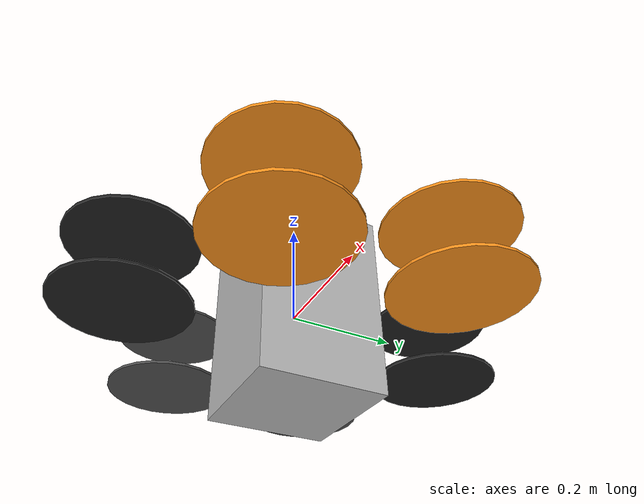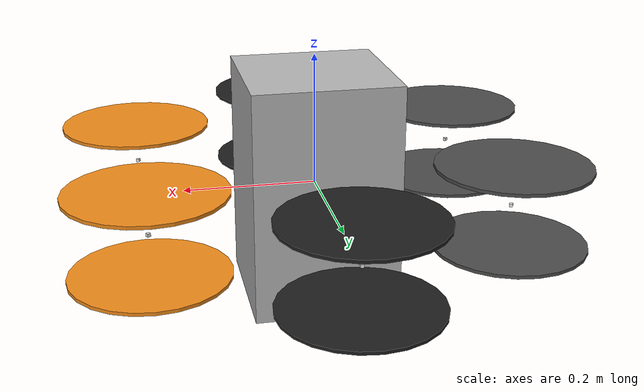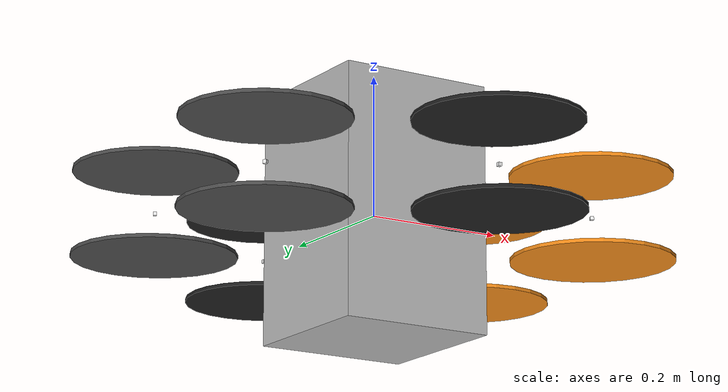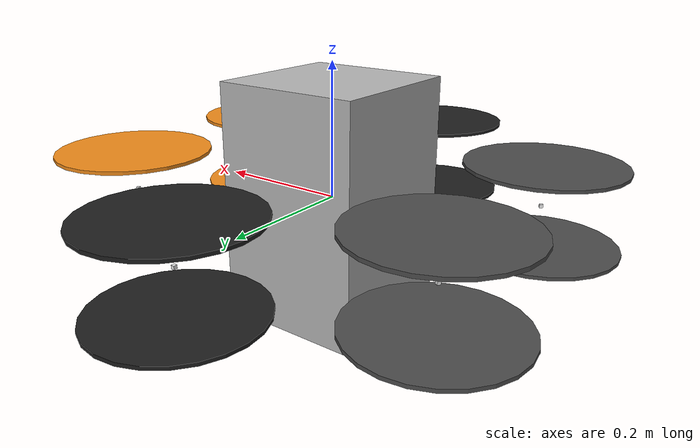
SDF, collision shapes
<sdf version='1.12'>
  <model name='omav'>
    <link name='omav/base_link'>
      <inertial>
        <pose>0 0 0 0 0 0</pose>
        <mass>2.2999999999999998</mass>
        <inertia>
          <ixx>0.0074999999999999997</ixx>
          <ixy>-3.4208000000000002e-05</ixy>
          <ixz>2.4695e-05</ixz>
          <iyy>0.010939000000000001</iyy>
          <iyz>-3.8825999999999999e-06</iyz>
          <izz>0.013690000000000001</izz>
        </inertia>
      </inertial>
      <collision name='omav/base_link_inertia_collision'>
        <pose>0 0 0 0 0 0</pose>
        <geometry>
          <box>
            <size>0.22 0.22 0.34999999999999998</size>
          </box>
        </geometry>
      </collision>
      <visual name='omav/base_link_inertia_visual'>
        <pose>0 0 0 0 0 0</pose>
        <geometry>
          <mesh>
            <scale>1 1 1</scale>
            <uri>model://meshes/omav_core.dae</uri>
          </mesh>
        </geometry>
      </visual>
    </link>
    <joint name='omav/tilt_unit_0_revolutejoint' type='revolute'>
      <pose relative_to='omav/base_link'>0 -0.29999999999999999 0 0 0 -1.5707963267995859</pose>
      <parent>omav/base_link</parent>
      <child>omav/tilt_unit_0</child>
      <axis>
        <xyz>1 0 0</xyz>
        <limit>
          <lower>-inf</lower>
          <upper>inf</upper>
        </limit>
        <dynamics>
          <spring_reference>0</spring_reference>
          <spring_stiffness>0</spring_stiffness>
        </dynamics>
      </axis>
    </joint>
    <link name='omav/tilt_unit_0'>
      <pose relative_to='omav/tilt_unit_0_revolutejoint'>0 0 0 0 0 0</pose>
      <inertial>
        <pose>0 0 0 0 0 0</pose>
        <mass>0.27700000000000002</mass>
        <inertia>
          <ixx>0.00034256999999999999</ixx>
          <ixy>0</ixy>
          <ixz>0</ixz>
          <iyy>0.0013205000000000001</iyy>
          <iyz>0</iyz>
          <izz>0.0010036999999999999</izz>
        </inertia>
      </inertial>
      <collision name='omav/tilt_unit_0_collision'>
        <pose>0 0 0 0 0 0</pose>
        <geometry>
          <box>
            <size>0.0050000000000000001 0.0050000000000000001 0.0050000000000000001</size>
          </box>
        </geometry>
        <surface>
          <contact>
            <ode/>
          </contact>
          <friction>
            <ode/>
          </friction>
        </surface>
      </collision>
      <visual name='omav/tilt_unit_0_visual'>
        <pose>0 0 0 0 0 0</pose>
        <geometry>
          <mesh>
            <scale>1 1 1</scale>
            <uri>model://meshes/omav_tiltarm.dae</uri>
          </mesh>
        </geometry>
        <material>
          <script>
            <name>Gazebo/White</name>
            <uri>file://media/materials/scripts/gazebo.material</uri>
          </script>
        </material>
      </visual>
    </link>
    <joint name='rotor_0_joint' type='revolute'>
      <pose relative_to='omav/tilt_unit_0'>0 0 0.059999999999999998 0 0 0</pose>
      <parent>omav/tilt_unit_0</parent>
      <child>rotor_0</child>
      <axis>
        <xyz>0 0 1</xyz>
        <limit>
          <lower>-inf</lower>
          <upper>inf</upper>
        </limit>
        <dynamics>
          <spring_reference>0</spring_reference>
          <spring_stiffness>0</spring_stiffness>
        </dynamics>
      </axis>
    </joint>
    <link name='rotor_0'>
      <pose relative_to='rotor_0_joint'>0 0 0 0 0 0</pose>
      <inertial>
        <pose>0 0 0 0 0 0</pose>
        <mass>0.0064999999999999997</mass>
        <inertia>
          <ixx>2.2154157804999998e-06</ixx>
          <ixy>0</ixy>
          <ixz>0</ixz>
          <iyy>7.0814709174105009e-05</iyy>
          <iyz>0</iyz>
          <izz>7.2932624993605005e-05</izz>
        </inertia>
      </inertial>
      <collision name='rotor_0_collision'>
        <pose>0 0 0 0 0 0</pose>
        <geometry>
          <cylinder>
            <length>0.0050000000000000001</length>
            <radius>0.1143</radius>
          </cylinder>
        </geometry>
        <surface>
          <contact>
            <ode/>
          </contact>
          <friction>
            <ode/>
          </friction>
        </surface>
      </collision>
      <visual name='rotor_0_visual'>
        <pose>0 0 0 0 0 0</pose>
        <geometry>
          <mesh>
            <scale>0.1143 0.1143 0.1143</scale>
            <uri>model://meshes/motor_prop_assembly.dae</uri>
          </mesh>
        </geometry>
        <material>
          <script>
            <name>Gazebo/Black</name>
            <uri>file://media/materials/scripts/gazebo.material</uri>
          </script>
        </material>
      </visual>
    </link>
    <joint name='rotor_6_joint' type='revolute'>
      <pose relative_to='omav/tilt_unit_0'>0 0 -0.059999999999999998 0 0 0</pose>
      <parent>omav/tilt_unit_0</parent>
      <child>rotor_6</child>
      <axis>
        <xyz>0 0 1</xyz>
        <limit>
          <lower>-inf</lower>
          <upper>inf</upper>
        </limit>
        <dynamics>
          <spring_reference>0</spring_reference>
          <spring_stiffness>0</spring_stiffness>
        </dynamics>
      </axis>
    </joint>
    <link name='rotor_6'>
      <pose relative_to='rotor_6_joint'>0 0 0 0 0 0</pose>
      <inertial>
        <pose>0 0 0 0 0 0</pose>
        <mass>0.0064999999999999997</mass>
        <inertia>
          <ixx>2.2154157804999998e-06</ixx>
          <ixy>0</ixy>
          <ixz>0</ixz>
          <iyy>7.0814709174105009e-05</iyy>
          <iyz>0</iyz>
          <izz>7.2932624993605005e-05</izz>
        </inertia>
      </inertial>
      <collision name='rotor_6_collision'>
        <pose>0 0 0 0 0 0</pose>
        <geometry>
          <cylinder>
            <length>0.0050000000000000001</length>
            <radius>0.1143</radius>
          </cylinder>
        </geometry>
        <surface>
          <contact>
            <ode/>
          </contact>
          <friction>
            <ode/>
          </friction>
        </surface>
      </collision>
      <visual name='rotor_6_visual'>
        <pose>0 0 0 0 0 0</pose>
        <geometry>
          <mesh>
            <scale>0.1143 0.1143 0.1143</scale>
            <uri>model://meshes/motor_prop_assembly.dae</uri>
          </mesh>
        </geometry>
        <material>
          <script>
            <name>Gazebo/Black</name>
            <uri>file://media/materials/scripts/gazebo.material</uri>
          </script>
        </material>
      </visual>
    </link>
    <joint name='omav/tilt_unit_1_revolutejoint' type='revolute'>
      <pose relative_to='omav/base_link'>0 0.29999999999999999 0 0 0 1.57079632679</pose>
      <parent>omav/base_link</parent>
      <child>omav/tilt_unit_1</child>
      <axis>
        <xyz>1 0 0</xyz>
        <limit>
          <lower>-inf</lower>
          <upper>inf</upper>
        </limit>
        <dynamics>
          <spring_reference>0</spring_reference>
          <spring_stiffness>0</spring_stiffness>
        </dynamics>
      </axis>
    </joint>
    <link name='omav/tilt_unit_1'>
      <pose relative_to='omav/tilt_unit_1_revolutejoint'>0 0 0 0 0 0</pose>
      <inertial>
        <pose>0 0 0 0 0 0</pose>
        <mass>0.27700000000000002</mass>
        <inertia>
          <ixx>0.00034256999999999999</ixx>
          <ixy>0</ixy>
          <ixz>0</ixz>
          <iyy>0.0013205000000000001</iyy>
          <iyz>0</iyz>
          <izz>0.0010036999999999999</izz>
        </inertia>
      </inertial>
      <collision name='omav/tilt_unit_1_collision'>
        <pose>0 0 0 0 0 0</pose>
        <geometry>
          <box>
            <size>0.0050000000000000001 0.0050000000000000001 0.0050000000000000001</size>
          </box>
        </geometry>
        <surface>
          <contact>
            <ode/>
          </contact>
          <friction>
            <ode/>
          </friction>
        </surface>
      </collision>
      <visual name='omav/tilt_unit_1_visual'>
        <pose>0 0 0 0 0 0</pose>
        <geometry>
          <mesh>
            <scale>1 1 1</scale>
            <uri>model://meshes/omav_tiltarm.dae</uri>
          </mesh>
        </geometry>
        <material>
          <script>
            <name>Gazebo/White</name>
            <uri>file://media/materials/scripts/gazebo.material</uri>
          </script>
        </material>
      </visual>
    </link>
    <joint name='rotor_1_joint' type='revolute'>
      <pose relative_to='omav/tilt_unit_1'>0 0 0.059999999999999998 0 0 0</pose>
      <parent>omav/tilt_unit_1</parent>
      <child>rotor_1</child>
      <axis>
        <xyz>0 0 1</xyz>
        <limit>
          <lower>-inf</lower>
          <upper>inf</upper>
        </limit>
        <dynamics>
          <spring_reference>0</spring_reference>
          <spring_stiffness>0</spring_stiffness>
        </dynamics>
      </axis>
    </joint>
    <link name='rotor_1'>
      <pose relative_to='rotor_1_joint'>0 0 0 0 0 0</pose>
      <inertial>
        <pose>0 0 0 0 0 0</pose>
        <mass>0.0064999999999999997</mass>
        <inertia>
          <ixx>2.2154157804999998e-06</ixx>
          <ixy>0</ixy>
          <ixz>0</ixz>
          <iyy>7.0814709174105009e-05</iyy>
          <iyz>0</iyz>
          <izz>7.2932624993605005e-05</izz>
        </inertia>
      </inertial>
      <collision name='rotor_1_collision'>
        <pose>0 0 0 0 0 0</pose>
        <geometry>
          <cylinder>
            <length>0.0050000000000000001</length>
            <radius>0.1143</radius>
          </cylinder>
        </geometry>
        <surface>
          <contact>
            <ode/>
          </contact>
          <friction>
            <ode/>
          </friction>
        </surface>
      </collision>
      <visual name='rotor_1_visual'>
        <pose>0 0 0 0 0 0</pose>
        <geometry>
          <mesh>
            <scale>0.1143 0.1143 0.1143</scale>
            <uri>model://meshes/motor_prop_assembly.dae</uri>
          </mesh>
        </geometry>
        <material>
          <script>
            <name>Gazebo/Black</name>
            <uri>file://media/materials/scripts/gazebo.material</uri>
          </script>
        </material>
      </visual>
    </link>
    <joint name='rotor_7_joint' type='revolute'>
      <pose relative_to='omav/tilt_unit_1'>0 0 -0.059999999999999998 0 0 0</pose>
      <parent>omav/tilt_unit_1</parent>
      <child>rotor_7</child>
      <axis>
        <xyz>0 0 1</xyz>
        <limit>
          <lower>-inf</lower>
          <upper>inf</upper>
        </limit>
        <dynamics>
          <spring_reference>0</spring_reference>
          <spring_stiffness>0</spring_stiffness>
        </dynamics>
      </axis>
    </joint>
    <link name='rotor_7'>
      <pose relative_to='rotor_7_joint'>0 0 0 0 0 0</pose>
      <inertial>
        <pose>0 0 0 0 0 0</pose>
        <mass>0.0064999999999999997</mass>
        <inertia>
          <ixx>2.2154157804999998e-06</ixx>
          <ixy>0</ixy>
          <ixz>0</ixz>
          <iyy>7.0814709174105009e-05</iyy>
          <iyz>0</iyz>
          <izz>7.2932624993605005e-05</izz>
        </inertia>
      </inertial>
      <collision name='rotor_7_collision'>
        <pose>0 0 0 0 0 0</pose>
        <geometry>
          <cylinder>
            <length>0.0050000000000000001</length>
            <radius>0.1143</radius>
          </cylinder>
        </geometry>
        <surface>
          <contact>
            <ode/>
          </contact>
          <friction>
            <ode/>
          </friction>
        </surface>
      </collision>
      <visual name='rotor_7_visual'>
        <pose>0 0 0 0 0 0</pose>
        <geometry>
          <mesh>
            <scale>0.1143 0.1143 0.1143</scale>
            <uri>model://meshes/motor_prop_assembly.dae</uri>
          </mesh>
        </geometry>
        <material>
          <script>
            <name>Gazebo/Black</name>
            <uri>file://media/materials/scripts/gazebo.material</uri>
          </script>
        </material>
      </visual>
    </link>
    <joint name='omav/tilt_unit_2_revolutejoint' type='revolute'>
      <pose relative_to='omav/base_link'>0.25980762113520001 0.14999999999999999 0 0 0 0.52359877559000012</pose>
      <parent>omav/base_link</parent>
      <child>omav/tilt_unit_2</child>
      <axis>
        <xyz>1 0 0</xyz>
        <limit>
          <lower>-inf</lower>
          <upper>inf</upper>
        </limit>
        <dynamics>
          <spring_reference>0</spring_reference>
          <spring_stiffness>0</spring_stiffness>
        </dynamics>
      </axis>
    </joint>
    <link name='omav/tilt_unit_2'>
      <pose relative_to='omav/tilt_unit_2_revolutejoint'>0 0 0 0 0 0</pose>
      <inertial>
        <pose>0 0 0 0 0 0</pose>
        <mass>0.27700000000000002</mass>
        <inertia>
          <ixx>0.00034256999999999999</ixx>
          <ixy>0</ixy>
          <ixz>0</ixz>
          <iyy>0.0013205000000000001</iyy>
          <iyz>0</iyz>
          <izz>0.0010036999999999999</izz>
        </inertia>
      </inertial>
      <collision name='omav/tilt_unit_2_collision'>
        <pose>0 0 0 0 0 0</pose>
        <geometry>
          <box>
            <size>0.0050000000000000001 0.0050000000000000001 0.0050000000000000001</size>
          </box>
        </geometry>
        <surface>
          <contact>
            <ode/>
          </contact>
          <friction>
            <ode/>
          </friction>
        </surface>
      </collision>
      <visual name='omav/tilt_unit_2_visual'>
        <pose>0 0 0 0 0 0</pose>
        <geometry>
          <mesh>
            <scale>1 1 1</scale>
            <uri>model://meshes/omav_tiltarm.dae</uri>
          </mesh>
        </geometry>
        <material>
          <script>
            <name>Gazebo/White</name>
            <uri>file://media/materials/scripts/gazebo.material</uri>
          </script>
        </material>
      </visual>
    </link>
    <joint name='rotor_2_joint' type='revolute'>
      <pose relative_to='omav/tilt_unit_2'>0 0 0.059999999999999998 0 0 0</pose>
      <parent>omav/tilt_unit_2</parent>
      <child>rotor_2</child>
      <axis>
        <xyz>0 0 1</xyz>
        <limit>
          <lower>-inf</lower>
          <upper>inf</upper>
        </limit>
        <dynamics>
          <spring_reference>0</spring_reference>
          <spring_stiffness>0</spring_stiffness>
        </dynamics>
      </axis>
    </joint>
    <link name='rotor_2'>
      <pose relative_to='rotor_2_joint'>0 0 0 0 0 0</pose>
      <inertial>
        <pose>0 0 0 0 0 0</pose>
        <mass>0.0064999999999999997</mass>
        <inertia>
          <ixx>2.2154157804999998e-06</ixx>
          <ixy>0</ixy>
          <ixz>0</ixz>
          <iyy>7.0814709174105009e-05</iyy>
          <iyz>0</iyz>
          <izz>7.2932624993605005e-05</izz>
        </inertia>
      </inertial>
      <collision name='rotor_2_collision'>
        <pose>0 0 0 0 0 0</pose>
        <geometry>
          <cylinder>
            <length>0.0050000000000000001</length>
            <radius>0.1143</radius>
          </cylinder>
        </geometry>
        <surface>
          <contact>
            <ode/>
          </contact>
          <friction>
            <ode/>
          </friction>
        </surface>
      </collision>
      <visual name='rotor_2_visual'>
        <pose>0 0 0 0 0 0</pose>
        <geometry>
          <mesh>
            <scale>0.1143 0.1143 0.1143</scale>
            <uri>model://meshes/motor_prop_assembly.dae</uri>
          </mesh>
        </geometry>
        <material>
          <script>
            <name>Gazebo/Orange</name>
            <uri>file://media/materials/scripts/gazebo.material</uri>
          </script>
        </material>
      </visual>
    </link>
    <joint name='rotor_8_joint' type='revolute'>
      <pose relative_to='omav/tilt_unit_2'>0 0 -0.059999999999999998 0 0 0</pose>
      <parent>omav/tilt_unit_2</parent>
      <child>rotor_8</child>
      <axis>
        <xyz>0 0 1</xyz>
        <limit>
          <lower>-inf</lower>
          <upper>inf</upper>
        </limit>
        <dynamics>
          <spring_reference>0</spring_reference>
          <spring_stiffness>0</spring_stiffness>
        </dynamics>
      </axis>
    </joint>
    <link name='rotor_8'>
      <pose relative_to='rotor_8_joint'>0 0 0 0 0 0</pose>
      <inertial>
        <pose>0 0 0 0 0 0</pose>
        <mass>0.0064999999999999997</mass>
        <inertia>
          <ixx>2.2154157804999998e-06</ixx>
          <ixy>0</ixy>
          <ixz>0</ixz>
          <iyy>7.0814709174105009e-05</iyy>
          <iyz>0</iyz>
          <izz>7.2932624993605005e-05</izz>
        </inertia>
      </inertial>
      <collision name='rotor_8_collision'>
        <pose>0 0 0 0 0 0</pose>
        <geometry>
          <cylinder>
            <length>0.0050000000000000001</length>
            <radius>0.1143</radius>
          </cylinder>
        </geometry>
        <surface>
          <contact>
            <ode/>
          </contact>
          <friction>
            <ode/>
          </friction>
        </surface>
      </collision>
      <visual name='rotor_8_visual'>
        <pose>0 0 0 0 0 0</pose>
        <geometry>
          <mesh>
            <scale>0.1143 0.1143 0.1143</scale>
            <uri>model://meshes/motor_prop_assembly.dae</uri>
          </mesh>
        </geometry>
        <material>
          <script>
            <name>Gazebo/Orange</name>
            <uri>file://media/materials/scripts/gazebo.material</uri>
          </script>
        </material>
      </visual>
    </link>
    <joint name='omav/tilt_unit_3_revolutejoint' type='revolute'>
      <pose relative_to='omav/base_link'>-0.25980762113520001 -0.14999999999999999 0 0 0 -2.617993877989587</pose>
      <parent>omav/base_link</parent>
      <child>omav/tilt_unit_3</child>
      <axis>
        <xyz>1 0 0</xyz>
        <limit>
          <lower>-inf</lower>
          <upper>inf</upper>
        </limit>
        <dynamics>
          <spring_reference>0</spring_reference>
          <spring_stiffness>0</spring_stiffness>
        </dynamics>
      </axis>
    </joint>
    <link name='omav/tilt_unit_3'>
      <pose relative_to='omav/tilt_unit_3_revolutejoint'>0 0 0 0 0 0</pose>
      <inertial>
        <pose>0 0 0 0 0 0</pose>
        <mass>0.27700000000000002</mass>
        <inertia>
          <ixx>0.00034256999999999999</ixx>
          <ixy>0</ixy>
          <ixz>0</ixz>
          <iyy>0.0013205000000000001</iyy>
          <iyz>0</iyz>
          <izz>0.0010036999999999999</izz>
        </inertia>
      </inertial>
      <collision name='omav/tilt_unit_3_collision'>
        <pose>0 0 0 0 0 0</pose>
        <geometry>
          <box>
            <size>0.0050000000000000001 0.0050000000000000001 0.0050000000000000001</size>
          </box>
        </geometry>
        <surface>
          <contact>
            <ode/>
          </contact>
          <friction>
            <ode/>
          </friction>
        </surface>
      </collision>
      <visual name='omav/tilt_unit_3_visual'>
        <pose>0 0 0 0 0 0</pose>
        <geometry>
          <mesh>
            <scale>1 1 1</scale>
            <uri>model://meshes/omav_tiltarm.dae</uri>
          </mesh>
        </geometry>
        <material>
          <script>
            <name>Gazebo/White</name>
            <uri>file://media/materials/scripts/gazebo.material</uri>
          </script>
        </material>
      </visual>
    </link>
    <joint name='rotor_3_joint' type='revolute'>
      <pose relative_to='omav/tilt_unit_3'>0 0 0.059999999999999998 0 0 0</pose>
      <parent>omav/tilt_unit_3</parent>
      <child>rotor_3</child>
      <axis>
        <xyz>0 0 1</xyz>
        <limit>
          <lower>-inf</lower>
          <upper>inf</upper>
        </limit>
        <dynamics>
          <spring_reference>0</spring_reference>
          <spring_stiffness>0</spring_stiffness>
        </dynamics>
      </axis>
    </joint>
    <link name='rotor_3'>
      <pose relative_to='rotor_3_joint'>0 0 0 0 0 0</pose>
      <inertial>
        <pose>0 0 0 0 0 0</pose>
        <mass>0.0064999999999999997</mass>
        <inertia>
          <ixx>2.2154157804999998e-06</ixx>
          <ixy>0</ixy>
          <ixz>0</ixz>
          <iyy>7.0814709174105009e-05</iyy>
          <iyz>0</iyz>
          <izz>7.2932624993605005e-05</izz>
        </inertia>
      </inertial>
      <collision name='rotor_3_collision'>
        <pose>0 0 0 0 0 0</pose>
        <geometry>
          <cylinder>
            <length>0.0050000000000000001</length>
            <radius>0.1143</radius>
          </cylinder>
        </geometry>
        <surface>
          <contact>
            <ode/>
          </contact>
          <friction>
            <ode/>
          </friction>
        </surface>
      </collision>
      <visual name='rotor_3_visual'>
        <pose>0 0 0 0 0 0</pose>
        <geometry>
          <mesh>
            <scale>0.1143 0.1143 0.1143</scale>
            <uri>model://meshes/motor_prop_assembly.dae</uri>
          </mesh>
        </geometry>
        <material>
          <script>
            <name>Gazebo/DarkGrey</name>
            <uri>file://media/materials/scripts/gazebo.material</uri>
          </script>
        </material>
      </visual>
    </link>
    <joint name='rotor_9_joint' type='revolute'>
      <pose relative_to='omav/tilt_unit_3'>0 0 -0.059999999999999998 0 0 0</pose>
      <parent>omav/tilt_unit_3</parent>
      <child>rotor_9</child>
      <axis>
        <xyz>0 0 1</xyz>
        <limit>
          <lower>-inf</lower>
          <upper>inf</upper>
        </limit>
        <dynamics>
          <spring_reference>0</spring_reference>
          <spring_stiffness>0</spring_stiffness>
        </dynamics>
      </axis>
    </joint>
    <link name='rotor_9'>
      <pose relative_to='rotor_9_joint'>0 0 0 0 0 0</pose>
      <inertial>
        <pose>0 0 0 0 0 0</pose>
        <mass>0.0064999999999999997</mass>
        <inertia>
          <ixx>2.2154157804999998e-06</ixx>
          <ixy>0</ixy>
          <ixz>0</ixz>
          <iyy>7.0814709174105009e-05</iyy>
          <iyz>0</iyz>
          <izz>7.2932624993605005e-05</izz>
        </inertia>
      </inertial>
      <collision name='rotor_9_collision'>
        <pose>0 0 0 0 0 0</pose>
        <geometry>
          <cylinder>
            <length>0.0050000000000000001</length>
            <radius>0.1143</radius>
          </cylinder>
        </geometry>
        <surface>
          <contact>
            <ode/>
          </contact>
          <friction>
            <ode/>
          </friction>
        </surface>
      </collision>
      <visual name='rotor_9_visual'>
        <pose>0 0 0 0 0 0</pose>
        <geometry>
          <mesh>
            <scale>0.1143 0.1143 0.1143</scale>
            <uri>model://meshes/motor_prop_assembly.dae</uri>
          </mesh>
        </geometry>
        <material>
          <script>
            <name>Gazebo/DarkGrey</name>
            <uri>file://media/materials/scripts/gazebo.material</uri>
          </script>
        </material>
      </visual>
    </link>
    <joint name='omav/tilt_unit_4_revolutejoint' type='revolute'>
      <pose relative_to='omav/base_link'>0.25980762113520001 -0.14999999999999999 0 0 0 -0.52359877559958634</pose>
      <parent>omav/base_link</parent>
      <child>omav/tilt_unit_4</child>
      <axis>
        <xyz>1 0 0</xyz>
        <limit>
          <lower>-inf</lower>
          <upper>inf</upper>
        </limit>
        <dynamics>
          <spring_reference>0</spring_reference>
          <spring_stiffness>0</spring_stiffness>
        </dynamics>
      </axis>
    </joint>
    <link name='omav/tilt_unit_4'>
      <pose relative_to='omav/tilt_unit_4_revolutejoint'>0 0 0 0 0 0</pose>
      <inertial>
        <pose>0 0 0 0 0 0</pose>
        <mass>0.27700000000000002</mass>
        <inertia>
          <ixx>0.00034256999999999999</ixx>
          <ixy>0</ixy>
          <ixz>0</ixz>
          <iyy>0.0013205000000000001</iyy>
          <iyz>0</iyz>
          <izz>0.0010036999999999999</izz>
        </inertia>
      </inertial>
      <collision name='omav/tilt_unit_4_collision'>
        <pose>0 0 0 0 0 0</pose>
        <geometry>
          <box>
            <size>0.0050000000000000001 0.0050000000000000001 0.0050000000000000001</size>
          </box>
        </geometry>
        <surface>
          <contact>
            <ode/>
          </contact>
          <friction>
            <ode/>
          </friction>
        </surface>
      </collision>
      <visual name='omav/tilt_unit_4_visual'>
        <pose>0 0 0 0 0 0</pose>
        <geometry>
          <mesh>
            <scale>1 1 1</scale>
            <uri>model://meshes/omav_tiltarm.dae</uri>
          </mesh>
        </geometry>
        <material>
          <script>
            <name>Gazebo/White</name>
            <uri>file://media/materials/scripts/gazebo.material</uri>
          </script>
        </material>
      </visual>
    </link>
    <joint name='rotor_10_joint' type='revolute'>
      <pose relative_to='omav/tilt_unit_4'>0 0 -0.059999999999999998 0 0 0</pose>
      <parent>omav/tilt_unit_4</parent>
      <child>rotor_10</child>
      <axis>
        <xyz>0 0 1</xyz>
        <limit>
          <lower>-inf</lower>
          <upper>inf</upper>
        </limit>
        <dynamics>
          <spring_reference>0</spring_reference>
          <spring_stiffness>0</spring_stiffness>
        </dynamics>
      </axis>
    </joint>
    <link name='rotor_10'>
      <pose relative_to='rotor_10_joint'>0 0 0 0 0 0</pose>
      <inertial>
        <pose>0 0 0 0 0 0</pose>
        <mass>0.0064999999999999997</mass>
        <inertia>
          <ixx>2.2154157804999998e-06</ixx>
          <ixy>0</ixy>
          <ixz>0</ixz>
          <iyy>7.0814709174105009e-05</iyy>
          <iyz>0</iyz>
          <izz>7.2932624993605005e-05</izz>
        </inertia>
      </inertial>
      <collision name='rotor_10_collision'>
        <pose>0 0 0 0 0 0</pose>
        <geometry>
          <cylinder>
            <length>0.0050000000000000001</length>
            <radius>0.1143</radius>
          </cylinder>
        </geometry>
        <surface>
          <contact>
            <ode/>
          </contact>
          <friction>
            <ode/>
          </friction>
        </surface>
      </collision>
      <visual name='rotor_10_visual'>
        <pose>0 0 0 0 0 0</pose>
        <geometry>
          <mesh>
            <scale>0.1143 0.1143 0.1143</scale>
            <uri>model://meshes/motor_prop_assembly.dae</uri>
          </mesh>
        </geometry>
        <material>
          <script>
            <name>Gazebo/Orange</name>
            <uri>file://media/materials/scripts/gazebo.material</uri>
          </script>
        </material>
      </visual>
    </link>
    <joint name='rotor_4_joint' type='revolute'>
      <pose relative_to='omav/tilt_unit_4'>0 0 0.059999999999999998 0 0 0</pose>
      <parent>omav/tilt_unit_4</parent>
      <child>rotor_4</child>
      <axis>
        <xyz>0 0 1</xyz>
        <limit>
          <lower>-inf</lower>
          <upper>inf</upper>
        </limit>
        <dynamics>
          <spring_reference>0</spring_reference>
          <spring_stiffness>0</spring_stiffness>
        </dynamics>
      </axis>
    </joint>
    <link name='rotor_4'>
      <pose relative_to='rotor_4_joint'>0 0 0 0 0 0</pose>
      <inertial>
        <pose>0 0 0 0 0 0</pose>
        <mass>0.0064999999999999997</mass>
        <inertia>
          <ixx>2.2154157804999998e-06</ixx>
          <ixy>0</ixy>
          <ixz>0</ixz>
          <iyy>7.0814709174105009e-05</iyy>
          <iyz>0</iyz>
          <izz>7.2932624993605005e-05</izz>
        </inertia>
      </inertial>
      <collision name='rotor_4_collision'>
        <pose>0 0 0 0 0 0</pose>
        <geometry>
          <cylinder>
            <length>0.0050000000000000001</length>
            <radius>0.1143</radius>
          </cylinder>
        </geometry>
        <surface>
          <contact>
            <ode/>
          </contact>
          <friction>
            <ode/>
          </friction>
        </surface>
      </collision>
      <visual name='rotor_4_visual'>
        <pose>0 0 0 0 0 0</pose>
        <geometry>
          <mesh>
            <scale>0.1143 0.1143 0.1143</scale>
            <uri>model://meshes/motor_prop_assembly.dae</uri>
          </mesh>
        </geometry>
        <material>
          <script>
            <name>Gazebo/Orange</name>
            <uri>file://media/materials/scripts/gazebo.material</uri>
          </script>
        </material>
      </visual>
    </link>
    <joint name='omav/tilt_unit_5_revolutejoint' type='revolute'>
      <pose relative_to='omav/base_link'>-0.25980762113520001 0.14999999999999999 0 0 0 2.6179938779900001</pose>
      <parent>omav/base_link</parent>
      <child>omav/tilt_unit_5</child>
      <axis>
        <xyz>1 0 0</xyz>
        <limit>
          <lower>-inf</lower>
          <upper>inf</upper>
        </limit>
        <dynamics>
          <spring_reference>0</spring_reference>
          <spring_stiffness>0</spring_stiffness>
        </dynamics>
      </axis>
    </joint>
    <link name='omav/tilt_unit_5'>
      <pose relative_to='omav/tilt_unit_5_revolutejoint'>0 0 0 0 0 0</pose>
      <inertial>
        <pose>0 0 0 0 0 0</pose>
        <mass>0.27700000000000002</mass>
        <inertia>
          <ixx>0.00034256999999999999</ixx>
          <ixy>0</ixy>
          <ixz>0</ixz>
          <iyy>0.0013205000000000001</iyy>
          <iyz>0</iyz>
          <izz>0.0010036999999999999</izz>
        </inertia>
      </inertial>
      <collision name='omav/tilt_unit_5_collision'>
        <pose>0 0 0 0 0 0</pose>
        <geometry>
          <box>
            <size>0.0050000000000000001 0.0050000000000000001 0.0050000000000000001</size>
          </box>
        </geometry>
        <surface>
          <contact>
            <ode/>
          </contact>
          <friction>
            <ode/>
          </friction>
        </surface>
      </collision>
      <visual name='omav/tilt_unit_5_visual'>
        <pose>0 0 0 0 0 0</pose>
        <geometry>
          <mesh>
            <scale>1 1 1</scale>
            <uri>model://meshes/omav_tiltarm.dae</uri>
          </mesh>
        </geometry>
        <material>
          <script>
            <name>Gazebo/White</name>
            <uri>file://media/materials/scripts/gazebo.material</uri>
          </script>
        </material>
      </visual>
    </link>
    <joint name='rotor_11_joint' type='revolute'>
      <pose relative_to='omav/tilt_unit_5'>0 0 -0.059999999999999998 0 0 0</pose>
      <parent>omav/tilt_unit_5</parent>
      <child>rotor_11</child>
      <axis>
        <xyz>0 0 1</xyz>
        <limit>
          <lower>-inf</lower>
          <upper>inf</upper>
        </limit>
        <dynamics>
          <spring_reference>0</spring_reference>
          <spring_stiffness>0</spring_stiffness>
        </dynamics>
      </axis>
    </joint>
    <link name='rotor_11'>
      <pose relative_to='rotor_11_joint'>0 0 0 0 0 0</pose>
      <inertial>
        <pose>0 0 0 0 0 0</pose>
        <mass>0.0064999999999999997</mass>
        <inertia>
          <ixx>2.2154157804999998e-06</ixx>
          <ixy>0</ixy>
          <ixz>0</ixz>
          <iyy>7.0814709174105009e-05</iyy>
          <iyz>0</iyz>
          <izz>7.2932624993605005e-05</izz>
        </inertia>
      </inertial>
      <collision name='rotor_11_collision'>
        <pose>0 0 0 0 0 0</pose>
        <geometry>
          <cylinder>
            <length>0.0050000000000000001</length>
            <radius>0.1143</radius>
          </cylinder>
        </geometry>
        <surface>
          <contact>
            <ode/>
          </contact>
          <friction>
            <ode/>
          </friction>
        </surface>
      </collision>
      <visual name='rotor_11_visual'>
        <pose>0 0 0 0 0 0</pose>
        <geometry>
          <mesh>
            <scale>0.1143 0.1143 0.1143</scale>
            <uri>model://meshes/motor_prop_assembly.dae</uri>
          </mesh>
        </geometry>
        <material>
          <script>
            <name>Gazebo/DarkGrey</name>
            <uri>file://media/materials/scripts/gazebo.material</uri>
          </script>
        </material>
      </visual>
    </link>
    <joint name='rotor_5_joint' type='revolute'>
      <pose relative_to='omav/tilt_unit_5'>0 0 0.059999999999999998 0 0 0</pose>
      <parent>omav/tilt_unit_5</parent>
      <child>rotor_5</child>
      <axis>
        <xyz>0 0 1</xyz>
        <limit>
          <lower>-inf</lower>
          <upper>inf</upper>
        </limit>
        <dynamics>
          <spring_reference>0</spring_reference>
          <spring_stiffness>0</spring_stiffness>
        </dynamics>
      </axis>
    </joint>
    <link name='rotor_5'>
      <pose relative_to='rotor_5_joint'>0 0 0 0 0 0</pose>
      <inertial>
        <pose>0 0 0 0 0 0</pose>
        <mass>0.0064999999999999997</mass>
        <inertia>
          <ixx>2.2154157804999998e-06</ixx>
          <ixy>0</ixy>
          <ixz>0</ixz>
          <iyy>7.0814709174105009e-05</iyy>
          <iyz>0</iyz>
          <izz>7.2932624993605005e-05</izz>
        </inertia>
      </inertial>
      <collision name='rotor_5_collision'>
        <pose>0 0 0 0 0 0</pose>
        <geometry>
          <cylinder>
            <length>0.0050000000000000001</length>
            <radius>0.1143</radius>
          </cylinder>
        </geometry>
        <surface>
          <contact>
            <ode/>
          </contact>
          <friction>
            <ode/>
          </friction>
        </surface>
      </collision>
      <visual name='rotor_5_visual'>
        <pose>0 0 0 0 0 0</pose>
        <geometry>
          <mesh>
            <scale>0.1143 0.1143 0.1143</scale>
            <uri>model://meshes/motor_prop_assembly.dae</uri>
          </mesh>
        </geometry>
        <material>
          <script>
            <name>Gazebo/DarkGrey</name>
            <uri>file://media/materials/scripts/gazebo.material</uri>
          </script>
        </material>
      </visual>
    </link>

    <plugin name='right_tilt_unit_model' filename='librotors_gazebo_motor_model.so'>
      <robotNamespace>omav</robotNamespace>
      <jointName>omav/tilt_unit_0_revolutejoint</jointName>
      <linkName>omav/tilt_unit_0</linkName>
      <turningDirection>ccw</turningDirection>
      <motorType>position</motorType>
      <commandSubTopic>/gazebo/command/motor_speed</commandSubTopic>
      <motorNumber>12</motorNumber>
      <motorSpeedPubTopic>/tilt_motor_0/velocity</motorSpeedPubTopic>
      <motorPositionPubTopic>/tilt_motor_0/position</motorPositionPubTopic>
      <joint_control_pid>
        <p>1.0</p>
        <i>0.0</i>
        <d>0.01</d>
        <iMax>1.0</iMax>
        <iMin>-1.0</iMin>
        <cmdMax>2.0</cmdMax>
        <cmdMin>-2.0</cmdMin>
      </joint_control_pid>
    </plugin>
    <plugin name='right_upper_motor_model' filename='librotors_gazebo_motor_model.so'>
      <robotNamespace>omav</robotNamespace>
      <jointName>rotor_0_joint</jointName>
      <linkName>rotor_0</linkName>
      <turningDirection>ccw</turningDirection>
      <timeConstantUp>0.0125</timeConstantUp>
      <timeConstantDown>0.025</timeConstantDown>
      <maxRotVelocity>1700</maxRotVelocity>
      <motorConstant>7.2e-06</motorConstant>
      <momentConstant>0.015</momentConstant>
      <commandSubTopic>/gazebo/command/motor_speed</commandSubTopic>
      <motorNumber>0</motorNumber>
      <rotorDragCoefficient>8.06428e-05</rotorDragCoefficient>
      <rollingMomentCoefficient>1e-06</rollingMomentCoefficient>
      <motorSpeedPubTopic>/motor_speed/0_upper</motorSpeedPubTopic>
      <rotorVelocitySlowdownSim>10</rotorVelocitySlowdownSim>
    </plugin>
    <plugin name='right_lower_motor_model' filename='librotors_gazebo_motor_model.so'>
      <robotNamespace>omav</robotNamespace>
      <jointName>rotor_6_joint</jointName>
      <linkName>rotor_6</linkName>
      <turningDirection>cw</turningDirection>
      <timeConstantUp>0.0125</timeConstantUp>
      <timeConstantDown>0.025</timeConstantDown>
      <maxRotVelocity>1700</maxRotVelocity>
      <motorConstant>7.2e-06</motorConstant>
      <momentConstant>0.005</momentConstant>
      <commandSubTopic>/gazebo/command/motor_speed</commandSubTopic>
      <motorNumber>6</motorNumber>
      <rotorDragCoefficient>8.06428e-05</rotorDragCoefficient>
      <rollingMomentCoefficient>1e-06</rollingMomentCoefficient>
      <motorSpeedPubTopic>/motor_speed/0_lower</motorSpeedPubTopic>
      <rotorVelocitySlowdownSim>10</rotorVelocitySlowdownSim>
    </plugin>
    <plugin name='left_tilt_unit_model' filename='librotors_gazebo_motor_model.so'>
      <robotNamespace>omav</robotNamespace>
      <jointName>omav/tilt_unit_1_revolutejoint</jointName>
      <linkName>omav/tilt_unit_1</linkName>
      <turningDirection>ccw</turningDirection>
      <motorType>position</motorType>
      <commandSubTopic>/gazebo/command/motor_speed</commandSubTopic>
      <motorNumber>13</motorNumber>
      <motorSpeedPubTopic>/tilt_motor_1/velocity</motorSpeedPubTopic>
      <motorPositionPubTopic>/tilt_motor_1/position</motorPositionPubTopic>
      <joint_control_pid>
        <p>1.0</p>
        <i>0.0</i>
        <d>0.01</d>
        <iMax>1.0</iMax>
        <iMin>-1.0</iMin>
        <cmdMax>2.0</cmdMax>
        <cmdMin>-2.0</cmdMin>
      </joint_control_pid>
    </plugin>
    <plugin name='left_upper_motor_model' filename='librotors_gazebo_motor_model.so'>
      <robotNamespace>omav</robotNamespace>
      <jointName>rotor_1_joint</jointName>
      <linkName>rotor_1</linkName>
      <turningDirection>cw</turningDirection>
      <timeConstantUp>0.0125</timeConstantUp>
      <timeConstantDown>0.025</timeConstantDown>
      <maxRotVelocity>1700</maxRotVelocity>
      <motorConstant>7.2e-06</motorConstant>
      <momentConstant>0.015</momentConstant>
      <commandSubTopic>/gazebo/command/motor_speed</commandSubTopic>
      <motorNumber>1</motorNumber>
      <rotorDragCoefficient>8.06428e-05</rotorDragCoefficient>
      <rollingMomentCoefficient>1e-06</rollingMomentCoefficient>
      <motorSpeedPubTopic>/motor_speed/1_upper</motorSpeedPubTopic>
      <rotorVelocitySlowdownSim>10</rotorVelocitySlowdownSim>
    </plugin>
    <plugin name='left_lower_motor_model' filename='librotors_gazebo_motor_model.so'>
      <robotNamespace>omav</robotNamespace>
      <jointName>rotor_7_joint</jointName>
      <linkName>rotor_7</linkName>
      <turningDirection>ccw</turningDirection>
      <timeConstantUp>0.0125</timeConstantUp>
      <timeConstantDown>0.025</timeConstantDown>
      <maxRotVelocity>1700</maxRotVelocity>
      <motorConstant>7.2e-06</motorConstant>
      <momentConstant>0.005</momentConstant>
      <commandSubTopic>/gazebo/command/motor_speed</commandSubTopic>
      <motorNumber>7</motorNumber>
      <rotorDragCoefficient>8.06428e-05</rotorDragCoefficient>
      <rollingMomentCoefficient>1e-06</rollingMomentCoefficient>
      <motorSpeedPubTopic>/motor_speed/1_lower</motorSpeedPubTopic>
      <rotorVelocitySlowdownSim>10</rotorVelocitySlowdownSim>
    </plugin>
    <plugin name='front_left_tilt_unit_model' filename='librotors_gazebo_motor_model.so'>
      <robotNamespace>omav</robotNamespace>
      <jointName>omav/tilt_unit_2_revolutejoint</jointName>
      <linkName>omav/tilt_unit_2</linkName>
      <turningDirection>ccw</turningDirection>
      <motorType>position</motorType>
      <commandSubTopic>/gazebo/command/motor_speed</commandSubTopic>
      <motorNumber>14</motorNumber>
      <motorSpeedPubTopic>/tilt_motor_2/velocity</motorSpeedPubTopic>
      <motorPositionPubTopic>/tilt_motor_2/position</motorPositionPubTopic>
      <joint_control_pid>
        <p>1.0</p>
        <i>0.0</i>
        <d>0.01</d>
        <iMax>1.0</iMax>
        <iMin>-1.0</iMin>
        <cmdMax>2.0</cmdMax>
        <cmdMin>-2.0</cmdMin>
      </joint_control_pid>
    </plugin>
    <plugin name='front_left_upper_motor_model' filename='librotors_gazebo_motor_model.so'>
      <robotNamespace>omav</robotNamespace>
      <jointName>rotor_2_joint</jointName>
      <linkName>rotor_2</linkName>
      <turningDirection>ccw</turningDirection>
      <timeConstantUp>0.0125</timeConstantUp>
      <timeConstantDown>0.025</timeConstantDown>
      <maxRotVelocity>1700</maxRotVelocity>
      <motorConstant>7.2e-06</motorConstant>
      <momentConstant>0.015</momentConstant>
      <commandSubTopic>/gazebo/command/motor_speed</commandSubTopic>
      <motorNumber>2</motorNumber>
      <rotorDragCoefficient>8.06428e-05</rotorDragCoefficient>
      <rollingMomentCoefficient>1e-06</rollingMomentCoefficient>
      <motorSpeedPubTopic>/motor_speed/2_upper</motorSpeedPubTopic>
      <rotorVelocitySlowdownSim>10</rotorVelocitySlowdownSim>
    </plugin>
    <plugin name='front_left_lower_motor_model' filename='librotors_gazebo_motor_model.so'>
      <robotNamespace>omav</robotNamespace>
      <jointName>rotor_8_joint</jointName>
      <linkName>rotor_8</linkName>
      <turningDirection>cw</turningDirection>
      <timeConstantUp>0.0125</timeConstantUp>
      <timeConstantDown>0.025</timeConstantDown>
      <maxRotVelocity>1700</maxRotVelocity>
      <motorConstant>7.2e-06</motorConstant>
      <momentConstant>0.005</momentConstant>
      <commandSubTopic>/gazebo/command/motor_speed</commandSubTopic>
      <motorNumber>8</motorNumber>
      <rotorDragCoefficient>8.06428e-05</rotorDragCoefficient>
      <rollingMomentCoefficient>1e-06</rollingMomentCoefficient>
      <motorSpeedPubTopic>/motor_speed/2_lower</motorSpeedPubTopic>
      <rotorVelocitySlowdownSim>10</rotorVelocitySlowdownSim>
    </plugin>
    <plugin name='back_right_tilt_unit_model' filename='librotors_gazebo_motor_model.so'>
      <robotNamespace>omav</robotNamespace>
      <jointName>omav/tilt_unit_3_revolutejoint</jointName>
      <linkName>omav/tilt_unit_3</linkName>
      <turningDirection>ccw</turningDirection>
      <motorType>position</motorType>
      <commandSubTopic>/gazebo/command/motor_speed</commandSubTopic>
      <motorNumber>15</motorNumber>
      <motorSpeedPubTopic>/tilt_motor_3/velocity</motorSpeedPubTopic>
      <motorPositionPubTopic>/tilt_motor_3/position</motorPositionPubTopic>
      <joint_control_pid>
        <p>1.0</p>
        <i>0.0</i>
        <d>0.01</d>
        <iMax>1.0</iMax>
        <iMin>-1.0</iMin>
        <cmdMax>2.0</cmdMax>
        <cmdMin>-2.0</cmdMin>
      </joint_control_pid>
    </plugin>
    <plugin name='back_right_upper_motor_model' filename='librotors_gazebo_motor_model.so'>
      <robotNamespace>omav</robotNamespace>
      <jointName>rotor_3_joint</jointName>
      <linkName>rotor_3</linkName>
      <turningDirection>cw</turningDirection>
      <timeConstantUp>0.0125</timeConstantUp>
      <timeConstantDown>0.025</timeConstantDown>
      <maxRotVelocity>1700</maxRotVelocity>
      <motorConstant>7.2e-06</motorConstant>
      <momentConstant>0.015</momentConstant>
      <commandSubTopic>/gazebo/command/motor_speed</commandSubTopic>
      <motorNumber>3</motorNumber>
      <rotorDragCoefficient>8.06428e-05</rotorDragCoefficient>
      <rollingMomentCoefficient>1e-06</rollingMomentCoefficient>
      <motorSpeedPubTopic>/motor_speed/3_upper</motorSpeedPubTopic>
      <rotorVelocitySlowdownSim>10</rotorVelocitySlowdownSim>
    </plugin>
    <plugin name='back_right_lower_motor_model' filename='librotors_gazebo_motor_model.so'>
      <robotNamespace>omav</robotNamespace>
      <jointName>rotor_9_joint</jointName>
      <linkName>rotor_9</linkName>
      <turningDirection>ccw</turningDirection>
      <timeConstantUp>0.0125</timeConstantUp>
      <timeConstantDown>0.025</timeConstantDown>
      <maxRotVelocity>1700</maxRotVelocity>
      <motorConstant>7.2e-06</motorConstant>
      <momentConstant>0.005</momentConstant>
      <commandSubTopic>/gazebo/command/motor_speed</commandSubTopic>
      <motorNumber>9</motorNumber>
      <rotorDragCoefficient>8.06428e-05</rotorDragCoefficient>
      <rollingMomentCoefficient>1e-06</rollingMomentCoefficient>
      <motorSpeedPubTopic>/motor_speed/3_lower</motorSpeedPubTopic>
      <rotorVelocitySlowdownSim>10</rotorVelocitySlowdownSim>
    </plugin>
    <plugin name='front_right_tilt_unit_model' filename='librotors_gazebo_motor_model.so'>
      <robotNamespace>omav</robotNamespace>
      <jointName>omav/tilt_unit_4_revolutejoint</jointName>
      <linkName>omav/tilt_unit_4</linkName>
      <turningDirection>ccw</turningDirection>
      <motorType>position</motorType>
      <commandSubTopic>/gazebo/command/motor_speed</commandSubTopic>
      <motorNumber>16</motorNumber>
      <motorSpeedPubTopic>/tilt_motor_4/velocity</motorSpeedPubTopic>
      <motorPositionPubTopic>/tilt_motor_4/position</motorPositionPubTopic>
      <joint_control_pid>
        <p>1.0</p>
        <i>0.0</i>
        <d>0.01</d>
        <iMax>1.0</iMax>
        <iMin>-1.0</iMin>
        <cmdMax>2.0</cmdMax>
        <cmdMin>-2.0</cmdMin>
      </joint_control_pid>
    </plugin>
    <plugin name='front_right_upper_motor_model' filename='librotors_gazebo_motor_model.so'>
      <robotNamespace>omav</robotNamespace>
      <jointName>rotor_4_joint</jointName>
      <linkName>rotor_4</linkName>
      <turningDirection>cw</turningDirection>
      <timeConstantUp>0.0125</timeConstantUp>
      <timeConstantDown>0.025</timeConstantDown>
      <maxRotVelocity>1700</maxRotVelocity>
      <motorConstant>7.2e-06</motorConstant>
      <momentConstant>0.015</momentConstant>
      <commandSubTopic>/gazebo/command/motor_speed</commandSubTopic>
      <motorNumber>4</motorNumber>
      <rotorDragCoefficient>8.06428e-05</rotorDragCoefficient>
      <rollingMomentCoefficient>1e-06</rollingMomentCoefficient>
      <motorSpeedPubTopic>/motor_speed/4_upper</motorSpeedPubTopic>
      <rotorVelocitySlowdownSim>10</rotorVelocitySlowdownSim>
    </plugin>
    <plugin name='front_right_lower_motor_model' filename='librotors_gazebo_motor_model.so'>
      <robotNamespace>omav</robotNamespace>
      <jointName>rotor_10_joint</jointName>
      <linkName>rotor_10</linkName>
      <turningDirection>ccw</turningDirection>
      <timeConstantUp>0.0125</timeConstantUp>
      <timeConstantDown>0.025</timeConstantDown>
      <maxRotVelocity>1700</maxRotVelocity>
      <motorConstant>7.2e-06</motorConstant>
      <momentConstant>0.005</momentConstant>
      <commandSubTopic>/gazebo/command/motor_speed</commandSubTopic>
      <motorNumber>10</motorNumber>
      <rotorDragCoefficient>8.06428e-05</rotorDragCoefficient>
      <rollingMomentCoefficient>1e-06</rollingMomentCoefficient>
      <motorSpeedPubTopic>/motor_speed/4_lower</motorSpeedPubTopic>
      <rotorVelocitySlowdownSim>10</rotorVelocitySlowdownSim>
    </plugin>
    <plugin name='back_left_tilt_unit_model' filename='librotors_gazebo_motor_model.so'>
      <robotNamespace>omav</robotNamespace>
      <jointName>omav/tilt_unit_5_revolutejoint</jointName>
      <linkName>omav/tilt_unit_5</linkName>
      <turningDirection>ccw</turningDirection>
      <motorType>position</motorType>
      <commandSubTopic>/gazebo/command/motor_speed</commandSubTopic>
      <motorNumber>17</motorNumber>
      <motorSpeedPubTopic>/tilt_motor_5/velocity</motorSpeedPubTopic>
      <motorPositionPubTopic>/tilt_motor_5/position</motorPositionPubTopic>
      <joint_control_pid>
        <p>1.0</p>
        <i>0.0</i>
        <d>0.01</d>
        <iMax>1.0</iMax>
        <iMin>-1.0</iMin>
        <cmdMax>2.0</cmdMax>
        <cmdMin>-2.0</cmdMin>
      </joint_control_pid>
    </plugin>
    <plugin name='back_left_upper_motor_model' filename='librotors_gazebo_motor_model.so'>
      <robotNamespace>omav</robotNamespace>
      <jointName>rotor_5_joint</jointName>
      <linkName>rotor_5</linkName>
      <turningDirection>ccw</turningDirection>
      <timeConstantUp>0.0125</timeConstantUp>
      <timeConstantDown>0.025</timeConstantDown>
      <maxRotVelocity>1700</maxRotVelocity>
      <motorConstant>7.2e-06</motorConstant>
      <momentConstant>0.015</momentConstant>
      <commandSubTopic>/gazebo/command/motor_speed</commandSubTopic>
      <motorNumber>5</motorNumber>
      <rotorDragCoefficient>8.06428e-05</rotorDragCoefficient>
      <rollingMomentCoefficient>1e-06</rollingMomentCoefficient>
      <motorSpeedPubTopic>/motor_speed/5_upper</motorSpeedPubTopic>
      <rotorVelocitySlowdownSim>10</rotorVelocitySlowdownSim>
    </plugin>
    <plugin name='back_left_lower_motor_model' filename='librotors_gazebo_motor_model.so'>
      <robotNamespace>omav</robotNamespace>
      <jointName>rotor_11_joint</jointName>
      <linkName>rotor_11</linkName>
      <turningDirection>cw</turningDirection>
      <timeConstantUp>0.0125</timeConstantUp>
      <timeConstantDown>0.025</timeConstantDown>
      <maxRotVelocity>1700</maxRotVelocity>
      <motorConstant>7.2e-06</motorConstant>
      <momentConstant>0.005</momentConstant>
      <commandSubTopic>/gazebo/command/motor_speed</commandSubTopic>
      <motorNumber>11</motorNumber>
      <rotorDragCoefficient>8.06428e-05</rotorDragCoefficient>
      <rollingMomentCoefficient>1e-06</rollingMomentCoefficient>
      <motorSpeedPubTopic>/motor_speed/5_lower</motorSpeedPubTopic>
      <rotorVelocitySlowdownSim>10</rotorVelocitySlowdownSim>
    </plugin>
    <plugin name='mavlink_interface' filename='librotors_gazebo_mavlink_interface.so'>
      <robotNamespace>omav</robotNamespace>
      <imu_rate>102</imu_rate>
      <imuSubTopic>/imu</imuSubTopic>
      <mavlink_addr>INADDR_ANY</mavlink_addr>
      <mavlink_udp_port>14560</mavlink_udp_port>
      <motorSpeedCommandPubTopic>/gazebo/command/motor_speed</motorSpeedCommandPubTopic>
      <control_channels>
        <channel name='rotor0'>
          <input_index>0</input_index>
          <input_offset>0</input_offset>
          <input_scaling>1700</input_scaling>
          <zero_position_disarmed>0</zero_position_disarmed>
          <zero_position_armed>100</zero_position_armed>
          <joint_control_type>velocity</joint_control_type>
        </channel>
        <channel name='rotor1'>
          <input_index>1</input_index>
          <input_offset>0</input_offset>
          <input_scaling>1700</input_scaling>
          <zero_position_disarmed>0</zero_position_disarmed>
          <zero_position_armed>100</zero_position_armed>
          <joint_control_type>velocity</joint_control_type>
        </channel>
        <channel name='rotor2'>
          <input_index>2</input_index>
          <input_offset>0</input_offset>
          <input_scaling>1700</input_scaling>
          <zero_position_disarmed>0</zero_position_disarmed>
          <zero_position_armed>100</zero_position_armed>
          <joint_control_type>velocity</joint_control_type>
        </channel>
        <channel name='rotor3'>
          <input_index>3</input_index>
          <input_offset>0</input_offset>
          <input_scaling>1700</input_scaling>
          <zero_position_disarmed>0</zero_position_disarmed>
          <zero_position_armed>100</zero_position_armed>
          <joint_control_type>velocity</joint_control_type>
        </channel>
        <channel name='rotor4'>
          <input_index>4</input_index>
          <input_offset>0</input_offset>
          <input_scaling>1700</input_scaling>
          <zero_position_disarmed>0</zero_position_disarmed>
          <zero_position_armed>100</zero_position_armed>
          <joint_control_type>velocity</joint_control_type>
        </channel>
        <channel name='rotor5'>
          <input_index>5</input_index>
          <input_offset>0</input_offset>
          <input_scaling>1700</input_scaling>
          <zero_position_disarmed>0</zero_position_disarmed>
          <zero_position_armed>100</zero_position_armed>
          <joint_control_type>velocity</joint_control_type>
        </channel>
        <channel name='rotor6'>
          <input_index>6</input_index>
          <input_offset>0</input_offset>
          <input_scaling>1700</input_scaling>
          <zero_position_disarmed>0</zero_position_disarmed>
          <zero_position_armed>100</zero_position_armed>
          <joint_control_type>velocity</joint_control_type>
        </channel>
        <channel name='rotor7'>
          <input_index>7</input_index>
          <input_offset>0</input_offset>
          <input_scaling>1700</input_scaling>
          <zero_position_disarmed>0</zero_position_disarmed>
          <zero_position_armed>100</zero_position_armed>
          <joint_control_type>velocity</joint_control_type>
        </channel>
        <channel name='rotor8'>
          <input_index>8</input_index>
          <input_offset>0</input_offset>
          <input_scaling>1700</input_scaling>
          <zero_position_disarmed>0</zero_position_disarmed>
          <zero_position_armed>100</zero_position_armed>
          <joint_control_type>velocity</joint_control_type>
        </channel>
        <channel name='rotor9'>
          <input_index>9</input_index>
          <input_offset>0</input_offset>
          <input_scaling>1700</input_scaling>
          <zero_position_disarmed>0</zero_position_disarmed>
          <zero_position_armed>100</zero_position_armed>
          <joint_control_type>velocity</joint_control_type>
        </channel>
        <channel name='rotor10'>
          <input_index>10</input_index>
          <input_offset>0</input_offset>
          <input_scaling>1700</input_scaling>
          <zero_position_disarmed>0</zero_position_disarmed>
          <zero_position_armed>100</zero_position_armed>
          <joint_control_type>velocity</joint_control_type>
        </channel>
        <channel name='rotor11'>
          <input_index>11</input_index>
          <input_offset>0</input_offset>
          <input_scaling>1700</input_scaling>
          <zero_position_disarmed>0</zero_position_disarmed>
          <zero_position_armed>100</zero_position_armed>
          <joint_control_type>velocity</joint_control_type>
        </channel>
        <channel name='tilt_unit0'>
          <input_index>12</input_index>
          <input_offset>0</input_offset>
          <input_scaling>31.4159</input_scaling>
          <zero_position_disarmed>0</zero_position_disarmed>
          <zero_position_armed>0</zero_position_armed>
          <joint_control_type>position</joint_control_type>
        </channel>
        <channel name='tilt_unit1'>
          <input_index>13</input_index>
          <input_offset>0</input_offset>
          <input_scaling>31.4159</input_scaling>
          <zero_position_disarmed>0</zero_position_disarmed>
          <zero_position_armed>0</zero_position_armed>
          <joint_control_type>position</joint_control_type>
        </channel>
        <channel name='tilt_unit2'>
          <input_index>14</input_index>
          <input_offset>0</input_offset>
          <input_scaling>31.4159</input_scaling>
          <zero_position_disarmed>0</zero_position_disarmed>
          <zero_position_armed>0</zero_position_armed>
          <joint_control_type>position</joint_control_type>
        </channel>
        <channel name='tilt_unit3'>
          <input_index>15</input_index>
          <input_offset>0</input_offset>
          <input_scaling>31.4159</input_scaling>
          <zero_position_disarmed>0</zero_position_disarmed>
          <zero_position_armed>0</zero_position_armed>
          <joint_control_type>position</joint_control_type>
        </channel>
        <channel name='tilt_unit4'>
          <input_index>16</input_index>
          <input_offset>0</input_offset>
          <input_scaling>31.4159</input_scaling>
          <zero_position_disarmed>0</zero_position_disarmed>
          <zero_position_armed>0</zero_position_armed>
          <joint_control_type>position</joint_control_type>
        </channel>
        <channel name='tilt_unit5'>
          <input_index>17</input_index>
          <input_offset>0</input_offset>
          <input_scaling>31.4159</input_scaling>
          <zero_position_disarmed>0</zero_position_disarmed>
          <zero_position_armed>0</zero_position_armed>
          <joint_control_type>position</joint_control_type>
        </channel>
      </control_channels>
    </plugin>
    <frame name='omav/base_joint' attached_to='omav/base_link'>
      <pose>0 0 0 0 0 0</pose>
    </frame>
    <frame name='omav/base_link_inertia' attached_to='omav/base_joint'>
      <pose>0 0 0 0 0 0</pose>
    </frame>
  </model>
</sdf>
